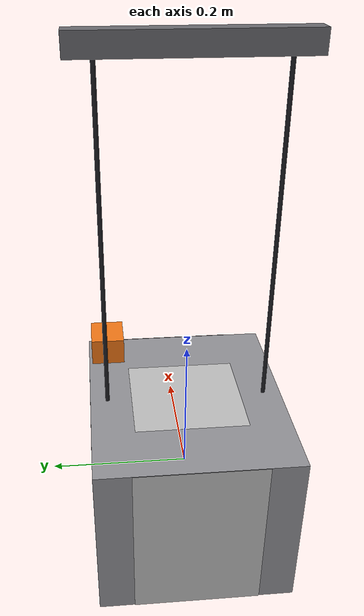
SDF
<?xml version="1.0"?>
<sdf version="1.7">
  <model name="simple_hanging_workpiece">
    <static>true</static>

    <!-- 主体 0.34×0.28×0.24m                                          -->
    <link name="main_body">
      <pose>0 0 0 0 0 0</pose>

      <visual name="body_vis">
        <geometry><box><size>0.34 0.28 0.24</size></box></geometry>
        <material>
          <ambient>0.55 0.55 0.57 1</ambient>
          <diffuse>0.55 0.55 0.57 1</diffuse>
        </material>
      </visual>

      <collision name="body_col">
        <geometry><box><size>0.34 0.28 0.24</size></box></geometry>
      </collision>
    </link>

    <!-- 顶部偏置块 (非对称特征, 不遮挡 Top AprilTag)                    -->
    <!-- size=0.06×0.05×0.04, pose=0.13 0.11 0.14                      -->
    <!-- 与 Top 面板 (XY ±0.08) 至少保留 5mm 空隙                       -->
    <link name="top_offset_block">
      <pose>0.13 0.11 0.14 0 0 0</pose>

      <visual name="block_vis">
        <geometry><box><size>0.06 0.05 0.04</size></box></geometry>
        <material>
          <ambient>0.92 0.45 0.08 1</ambient>
          <diffuse>0.92 0.45 0.08 1</diffuse>
        </material>
      </visual>
    </link>

    <!-- 面板 (DAE mesh, 1×1m XY 平面, UV 0→1, 双面)                   -->
    <!-- pose 将 Z-normal 平面旋转到对应面方向, scale 匹配物理尺寸       -->
    <!-- PANEL_GAP = 0.001 m                                           -->

    <!-- Front: ChArUco 8×6, 0.24×0.18m, 面向 +X -->
    <link name="front_panel">
      <pose>0.171 0 0 0 1.570796 0</pose>
      <visual name="front_panel_vis">
        <geometry>
          <mesh>
            <uri>model://calibration_target/meshes/panel_unit.dae</uri>
            <scale>0.24 0.18 1.0</scale>
          </mesh>
        </geometry>
        <cast_shadows>false</cast_shadows>
        <material>
          <script>
            <uri>model://calibration_target/materials/scripts</uri>
            <uri>model://calibration_target/materials/textures</uri>
            <name>CR5/Calibration/CharucoFront</name>
          </script>
        </material>
      </visual>
    </link>

    <!-- Left: AprilTag 2×2, 0.22×0.18m, 面向 +Y -->
    <link name="left_panel">
      <pose>0 0.141 0 -1.570796 0 0</pose>
      <visual name="left_panel_vis">
        <geometry>
          <mesh>
            <uri>model://calibration_target/meshes/panel_unit.dae</uri>
            <scale>0.22 0.18 1.0</scale>
          </mesh>
        </geometry>
        <cast_shadows>false</cast_shadows>
        <material>
          <script>
            <uri>model://calibration_target/materials/scripts</uri>
            <uri>model://calibration_target/materials/textures</uri>
            <name>CR5/Calibration/AprilTagLeft</name>
          </script>
        </material>
      </visual>
    </link>

    <!-- Right: ArUco 2×2, 0.22×0.18m, 面向 -Y -->
    <link name="right_panel">
      <pose>0 -0.141 0 1.570796 0 0</pose>
      <visual name="right_panel_vis">
        <geometry>
          <mesh>
            <uri>model://calibration_target/meshes/panel_unit.dae</uri>
            <scale>0.22 0.18 1.0</scale>
          </mesh>
        </geometry>
        <cast_shadows>false</cast_shadows>
        <material>
          <script>
            <uri>model://calibration_target/materials/scripts</uri>
            <uri>model://calibration_target/materials/textures</uri>
            <name>CR5/Calibration/ArucoRight</name>
          </script>
        </material>
      </visual>
    </link>

    <!-- Top: AprilTag, 0.16×0.16m, 面向 +Z -->
    <link name="top_panel">
      <pose>0 0 0.121 0 0 0</pose>
      <visual name="top_panel_vis">
        <geometry>
          <mesh>
            <uri>model://calibration_target/meshes/panel_unit.dae</uri>
            <scale>0.16 0.16 1.0</scale>
          </mesh>
        </geometry>
        <cast_shadows>false</cast_shadows>
        <material>
          <script>
            <uri>model://calibration_target/materials/scripts</uri>
            <uri>model://calibration_target/materials/textures</uri>
            <name>CR5/Calibration/AprilTagTop</name>
          </script>
        </material>
      </visual>
    </link>

    <!-- Back: ChArUco 8×6, 0.24×0.18m, 面向 -X -->
    <link name="back_panel">
      <pose>-0.171 0 0 0 -1.570796 0</pose>
      <visual name="back_panel_vis">
        <geometry>
          <mesh>
            <uri>model://calibration_target/meshes/panel_unit.dae</uri>
            <scale>0.24 0.18 1.0</scale>
          </mesh>
        </geometry>
        <cast_shadows>false</cast_shadows>
        <material>
          <script>
            <uri>model://calibration_target/materials/scripts</uri>
            <uri>model://calibration_target/materials/textures</uri>
            <name>CR5/Calibration/CharucoBack</name>
          </script>
        </material>
      </visual>
    </link>

    <!-- 吊索 + 横杆 (相对几何, V8.15)                                  -->
    <!-- hanger_y = ±0.115, cable z 范围 0.12~0.59, length=0.470      -->
    <!-- spreader_center_z = 0.605 (relative to body center)           -->
    <!-- spreader_top_z   = body_center_z + 0.605 + 0.015              -->
    <!--                   = body_center_z + 0.620                     -->
    <!-- Scene contract:                                               -->
    <!--   goalpost_beam_bottom_world = target_world_z + 0.620         -->
    <!--   abs(beam_bottom - spreader_top) <= 5mm                      -->
    <!-- 吊索: bottom=body_top(0.12), top=spreader_bottom(0.59)        -->
    <link name="spreader_bar">
      <pose>0 0 0.605 0 0 0</pose>
      <visual name="bar_vis">
        <geometry><box><size>0.03 0.30 0.03</size></box></geometry>
        <material>
          <ambient>0.40 0.40 0.42 1</ambient>
        </material>
      </visual>
      <collision name="bar_col">
        <geometry><box><size>0.03 0.30 0.03</size></box></geometry>
      </collision>
    </link>

    <link name="left_cable">
      <pose>0 -0.115 0.355 0 0 0</pose>
      <visual name="left_cable_vis">
        <geometry><cylinder><radius>0.003</radius><length>0.470</length></cylinder></geometry>
        <material>
          <ambient>0.12 0.12 0.14 1</ambient>
        </material>
      </visual>
    </link>

    <link name="right_cable">
      <pose>0 0.115 0.355 0 0 0</pose>
      <visual name="right_cable_vis">
        <geometry><cylinder><radius>0.003</radius><length>0.470</length></cylinder></geometry>
        <material>
          <ambient>0.12 0.12 0.14 1</ambient>
        </material>
      </visual>
    </link>

  </model>
</sdf>
